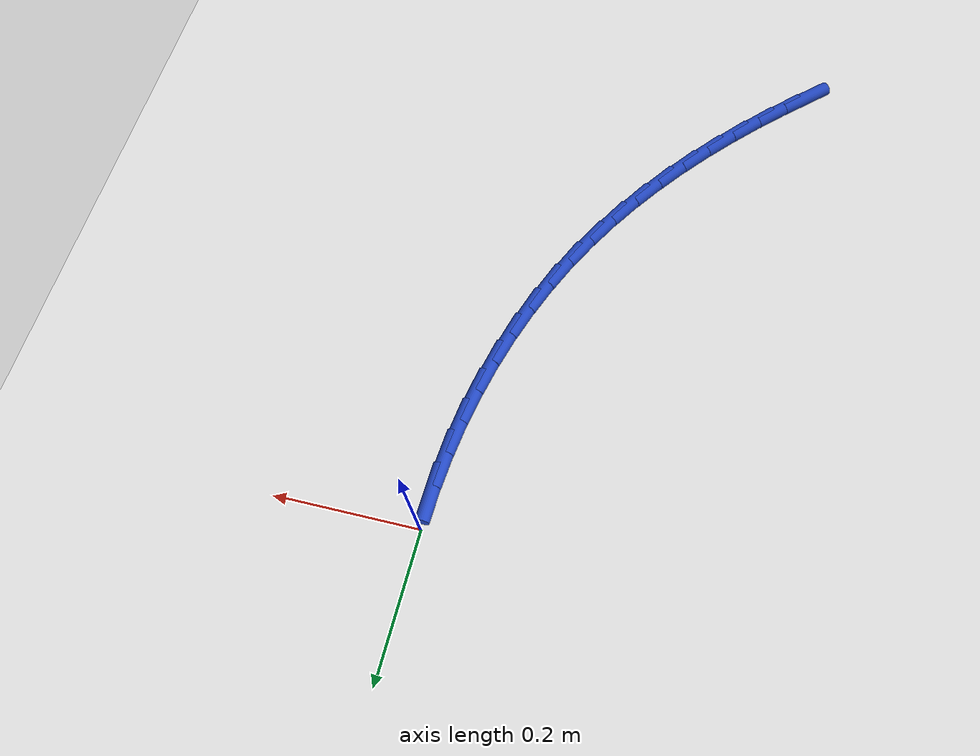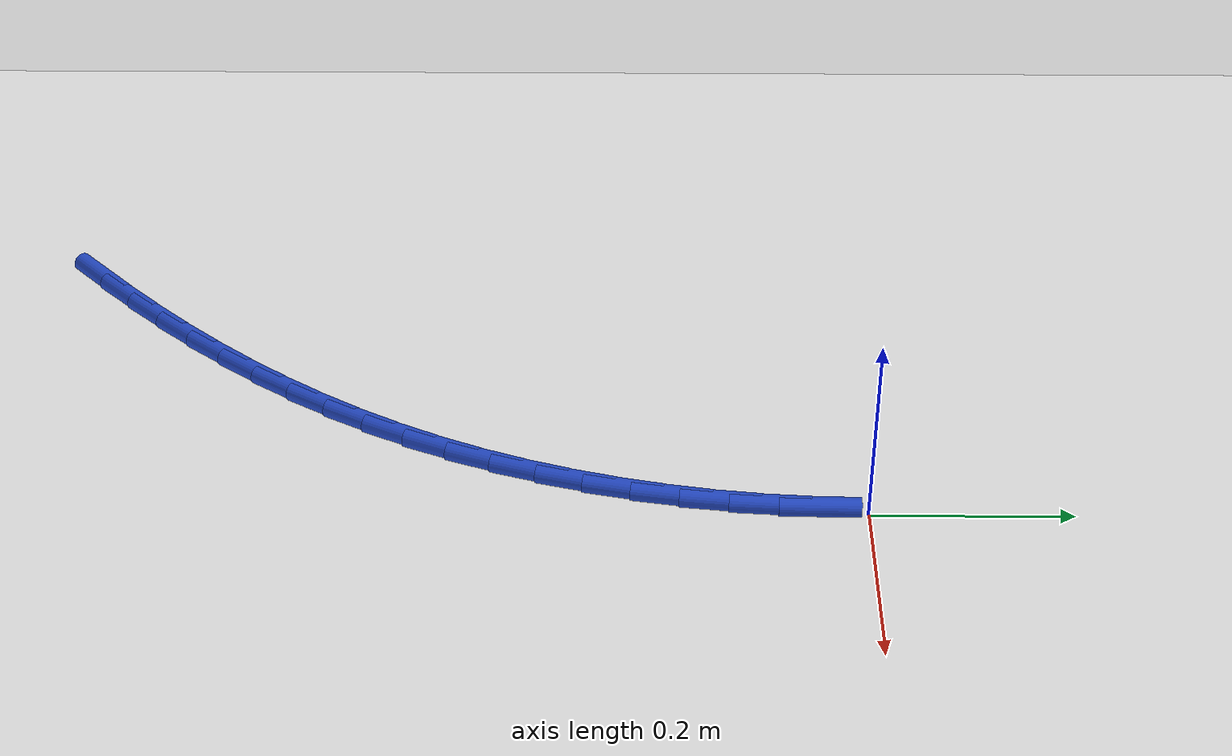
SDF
<sdf version="1.6">
 <world name="default">
  <model name="ground_plane">
   <static>1</static>
   <link name="link">
    <collision name="collision">
     <geometry><plane><normal>0 0 1</normal><size>100 100</size></plane></geometry>
     <surface><friction><ode><mu>100</mu><mu2>50</mu2></ode></friction></surface>
    </collision>
    <visual name="visual">
     <cast_shadows>0</cast_shadows>
     <geometry><plane><normal>0 0 1</normal><size>100 100</size></plane></geometry>
     <material>
      <script><uri>file://media/materials/scripts/gazebo.material</uri><name>Gazebo/WhiteGlow</name></script>
     </material>
    </visual>
   </link>
  </model>
  <model name="line">
   <link name="link_131">
    <pose>-0.38425784681838054 -0.793496464301171 0.01 0 1.57 0.748748731541525</pose>
    <collision name="collision">
     <geometry><cylinder><radius>0.01</radius><length>0.08</length></cylinder></geometry>
    </collision>
    <visual name="visual">
     <material>
      <script><name>Gazebo/Blue</name><uri>file://media/materials/scripts/gazebo.material</uri></script>
     </material>
     <geometry><cylinder><radius>0.01</radius><length>0.08</length></cylinder></geometry>
    </visual>
   </link>
   <link name="link_132">
    <pose>-0.34823391386751584 -0.7600207933743995 0.01 0 1.57 0.7787245345767037</pose>
    <collision name="collision">
     <geometry><cylinder><radius>0.01</radius><length>0.08</length></cylinder></geometry>
    </collision>
    <visual name="visual">
     <material>
      <script><name>Gazebo/Blue</name><uri>file://media/materials/scripts/gazebo.material</uri></script>
     </material>
     <geometry><cylinder><radius>0.01</radius><length>0.08</length></cylinder></geometry>
    </visual>
   </link>
   <link name="link_133">
    <pose>-0.3134342287908695 -0.725682516244918 0.01 0 1.57 0.8099666092948302</pose>
    <collision name="collision">
     <geometry><cylinder><radius>0.01</radius><length>0.08</length></cylinder></geometry>
    </collision>
    <visual name="visual">
     <material>
      <script><name>Gazebo/Blue</name><uri>file://media/materials/scripts/gazebo.material</uri></script>
     </material>
     <geometry><cylinder><radius>0.01</radius><length>0.08</length></cylinder></geometry>
    </visual>
   </link>
   <link name="link_134">
    <pose>-0.27995087244096006 -0.6905121040425848 0.01 0 1.57 0.8438203063107502</pose>
    <collision name="collision">
     <geometry><cylinder><radius>0.01</radius><length>0.08</length></cylinder></geometry>
    </collision>
    <visual name="visual">
     <material>
      <script><name>Gazebo/Blue</name><uri>file://media/materials/scripts/gazebo.material</uri></script>
     </material>
     <geometry><cylinder><radius>0.01</radius><length>0.08</length></cylinder></geometry>
    </visual>
   </link>
   <link name="link_135">
    <pose>-0.24789011691973234 -0.6544679827033684 0.01 0 1.57 0.88039684459711</pose>
    <collision name="collision">
     <geometry><cylinder><radius>0.01</radius><length>0.08</length></cylinder></geometry>
    </collision>
    <visual name="visual">
     <material>
      <script><name>Gazebo/Blue</name><uri>file://media/materials/scripts/gazebo.material</uri></script>
     </material>
     <geometry><cylinder><radius>0.01</radius><length>0.08</length></cylinder></geometry>
    </visual>
   </link>
   <link name="link_136">
    <pose>-0.21735883536251638 -0.6175055268768017 0.01 0 1.57 0.9197299544960507</pose>
    <collision name="collision">
     <geometry><cylinder><radius>0.01</radius><length>0.08</length></cylinder></geometry>
    </collision>
    <visual name="visual">
     <material>
      <script><name>Gazebo/Blue</name><uri>file://media/materials/scripts/gazebo.material</uri></script>
     </material>
     <geometry><cylinder><radius>0.01</radius><length>0.08</length></cylinder></geometry>
    </visual>
   </link>
   <link name="link_137">
    <pose>-0.1884639009046438 -0.5795801112124186 0.01 0 1.57 0.9618202358725043</pose>
    <collision name="collision">
     <geometry><cylinder><radius>0.01</radius><length>0.08</length></cylinder></geometry>
    </collision>
    <visual name="visual">
     <material>
      <script><name>Gazebo/Blue</name><uri>file://media/materials/scripts/gazebo.material</uri></script>
     </material>
     <geometry><cylinder><radius>0.01</radius><length>0.08</length></cylinder></geometry>
    </visual>
   </link>
   <link name="link_138">
    <pose>-0.16131218668144595 -0.5406471103597535 0.01 0 1.57 1.0066259070821266</pose>
    <collision name="collision">
     <geometry><cylinder><radius>0.01</radius><length>0.08</length></cylinder></geometry>
    </collision>
    <visual name="visual">
     <material>
      <script><name>Gazebo/Blue</name><uri>file://media/materials/scripts/gazebo.material</uri></script>
     </material>
     <geometry><cylinder><radius>0.01</radius><length>0.08</length></cylinder></geometry>
    </visual>
   </link>
   <link name="link_139">
    <pose>-0.13601056582825302 -0.5006618989683389 0.01 0 1.57 1.054053677145321</pose>
    <collision name="collision">
     <geometry><cylinder><radius>0.01</radius><length>0.08</length></cylinder></geometry>
    </collision>
    <visual name="visual">
     <material>
      <script><name>Gazebo/Blue</name><uri>file://media/materials/scripts/gazebo.material</uri></script>
     </material>
     <geometry><cylinder><radius>0.01</radius><length>0.08</length></cylinder></geometry>
    </visual>
   </link>
   <link name="link_140">
    <pose>-0.11266591148039683 -0.45957985168770943 0.01 0 1.57 1.103950697596528</pose>
    <collision name="collision">
     <geometry><cylinder><radius>0.01</radius><length>0.08</length></cylinder></geometry>
    </collision>
    <visual name="visual">
     <material>
      <script><name>Gazebo/Blue</name><uri>file://media/materials/scripts/gazebo.material</uri></script>
     </material>
     <geometry><cylinder><radius>0.01</radius><length>0.08</length></cylinder></geometry>
    </visual>
   </link>
   <link name="link_141">
    <pose>-0.09138509677320758 -0.4173563431673974 0.01 0 1.57 1.1558559382434619</pose>
    <collision name="collision">
     <geometry><cylinder><radius>0.01</radius><length>0.08</length></cylinder></geometry>
    </collision>
    <visual name="visual">
     <material>
      <script><name>Gazebo/Blue</name><uri>file://media/materials/scripts/gazebo.material</uri></script>
     </material>
     <geometry><cylinder><radius>0.01</radius><length>0.08</length></cylinder></geometry>
    </visual>
   </link>
   <link name="link_142">
    <pose>-0.07226840133159883 -0.37396035172229075 0.01 0 1.57 1.2075329215654869</pose>
    <collision name="collision">
     <geometry><cylinder><radius>0.01</radius><length>0.08</length></cylinder></geometry>
    </collision>
    <visual name="visual">
     <material>
      <script><name>Gazebo/Blue</name><uri>file://media/materials/scripts/gazebo.material</uri></script>
     </material>
     <geometry><cylinder><radius>0.01</radius><length>0.08</length></cylinder></geometry>
    </visual>
   </link>
   <link name="link_143">
    <pose>-0.0553592456626792 -0.3294781668356642 0.01 0 1.57 1.25805755156446</pose>
    <collision name="collision">
     <geometry><cylinder><radius>0.01</radius><length>0.08</length></cylinder></geometry>
    </collision>
    <visual name="visual">
     <material>
      <script><name>Gazebo/Blue</name><uri>file://media/materials/scripts/gazebo.material</uri></script>
     </material>
     <geometry><cylinder><radius>0.01</radius><length>0.08</length></cylinder></geometry>
    </visual>
   </link>
   <link name="link_144">
    <pose>-0.040671996540760126 -0.2840560213643764 0.01 0 1.57 1.3076280144166625</pose>
    <collision name="collision">
     <geometry><cylinder><radius>0.01</radius><length>0.08</length></cylinder></geometry>
    </collision>
    <visual name="visual">
     <material>
      <script><name>Gazebo/Blue</name><uri>file://media/materials/scripts/gazebo.material</uri></script>
     </material>
     <geometry><cylinder><radius>0.01</radius><length>0.08</length></cylinder></geometry>
    </visual>
   </link>
   <link name="link_145">
    <pose>-0.02822078719269459 -0.23784063001809364 0.01 0 1.57 1.3564572810416877</pose>
    <collision name="collision">
     <geometry><cylinder><radius>0.01</radius><length>0.08</length></cylinder></geometry>
    </collision>
    <visual name="visual">
     <material>
      <script><name>Gazebo/Blue</name><uri>file://media/materials/scripts/gazebo.material</uri></script>
     </material>
     <geometry><cylinder><radius>0.01</radius><length>0.08</length></cylinder></geometry>
    </visual>
   </link>
   <link name="link_146">
    <pose>-0.01801975084533455 -0.1909787075064788 0.01 0 1.57 1.404762215142832</pose>
    <collision name="collision">
     <geometry><cylinder><radius>0.01</radius><length>0.08</length></cylinder></geometry>
    </collision>
    <visual name="visual">
     <material>
      <script><name>Gazebo/Blue</name><uri>file://media/materials/scripts/gazebo.material</uri></script>
     </material>
     <geometry><cylinder><radius>0.01</radius><length>0.08</length></cylinder></geometry>
    </visual>
   </link>
   <link name="link_147">
    <pose>-0.01008302072553265 -0.14361696853919728 0.01 0 1.57 1.4527620035316655</pose>
    <collision name="collision">
     <geometry><cylinder><radius>0.01</radius><length>0.08</length></cylinder></geometry>
    </collision>
    <visual name="visual">
     <material>
      <script><name>Gazebo/Blue</name><uri>file://media/materials/scripts/gazebo.material</uri></script>
     </material>
     <geometry><cylinder><radius>0.01</radius><length>0.08</length></cylinder></geometry>
    </visual>
   </link>
   <link name="link_148">
    <pose>-0.004424730060141389 -0.09590212782591438 0.01 0 1.57 1.5006770863462429</pose>
    <collision name="collision">
     <geometry><cylinder><radius>0.01</radius><length>0.08</length></cylinder></geometry>
    </collision>
    <visual name="visual">
     <material>
      <script><name>Gazebo/Blue</name><uri>file://media/materials/scripts/gazebo.material</uri></script>
     </material>
     <geometry><cylinder><radius>0.01</radius><length>0.08</length></cylinder></geometry>
    </visual>
   </link>
   <link name="link_149">
    <pose>-0.0010590120760129865 -0.047980900076293194 0.01 0 1.57 1.5487283756364114</pose>
    <collision name="collision">
     <geometry><cylinder><radius>0.01</radius><length>0.08</length></cylinder></geometry>
    </collision>
    <visual name="visual">
     <material>
      <script><name>Gazebo/Blue</name><uri>file://media/materials/scripts/gazebo.material</uri></script>
     </material>
     <geometry><cylinder><radius>0.01</radius><length>0.08</length></cylinder></geometry>
    </visual>
   </link>
  </model>
 </world>
</sdf>
